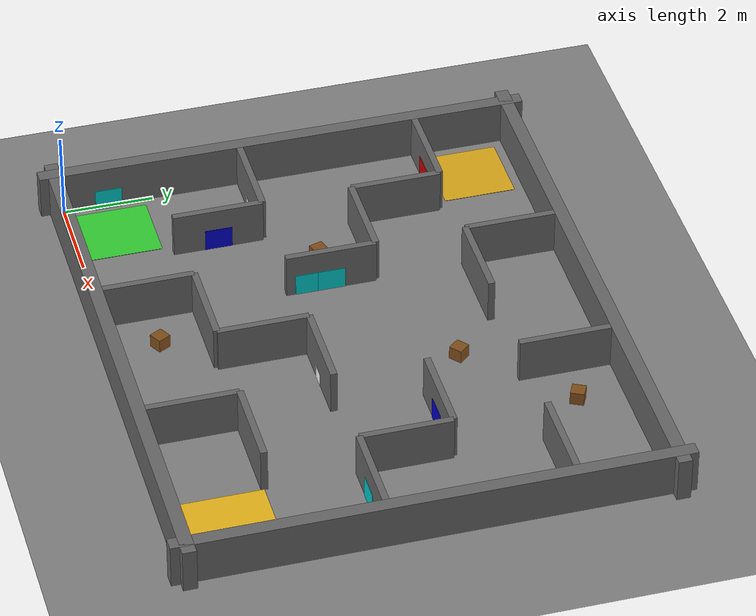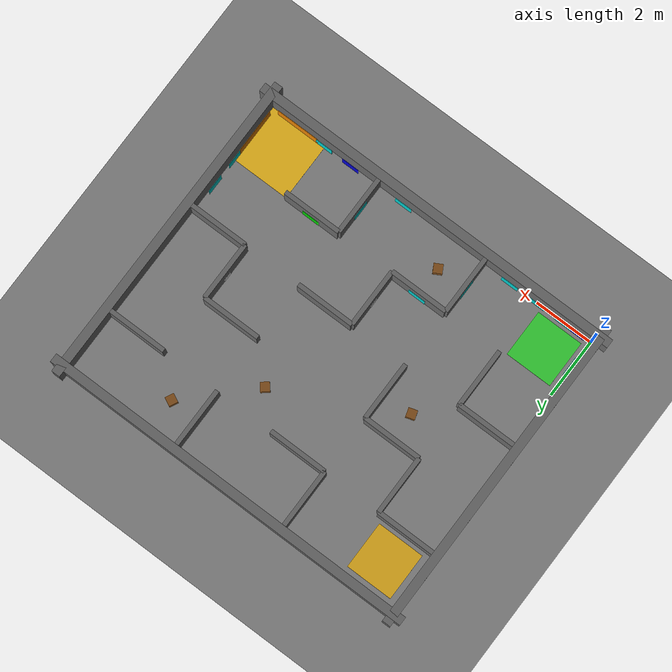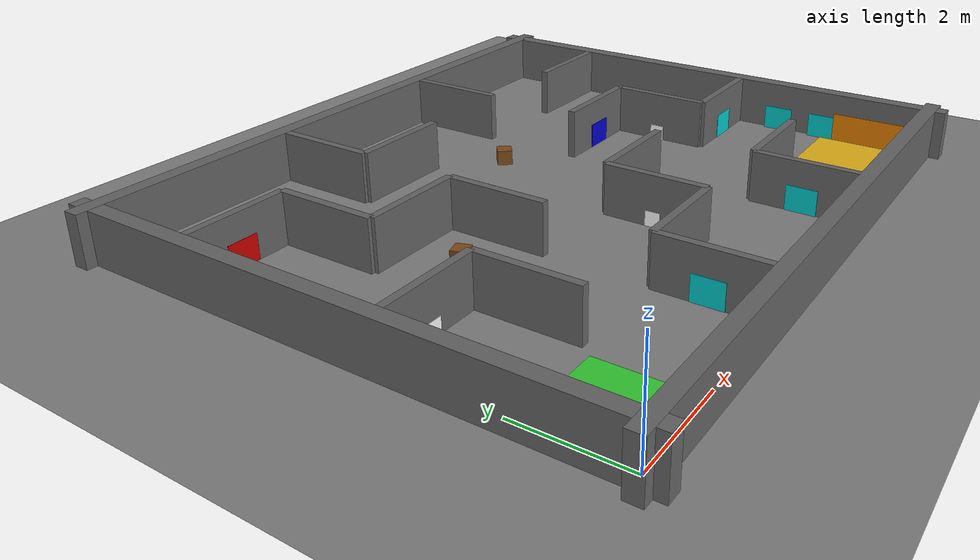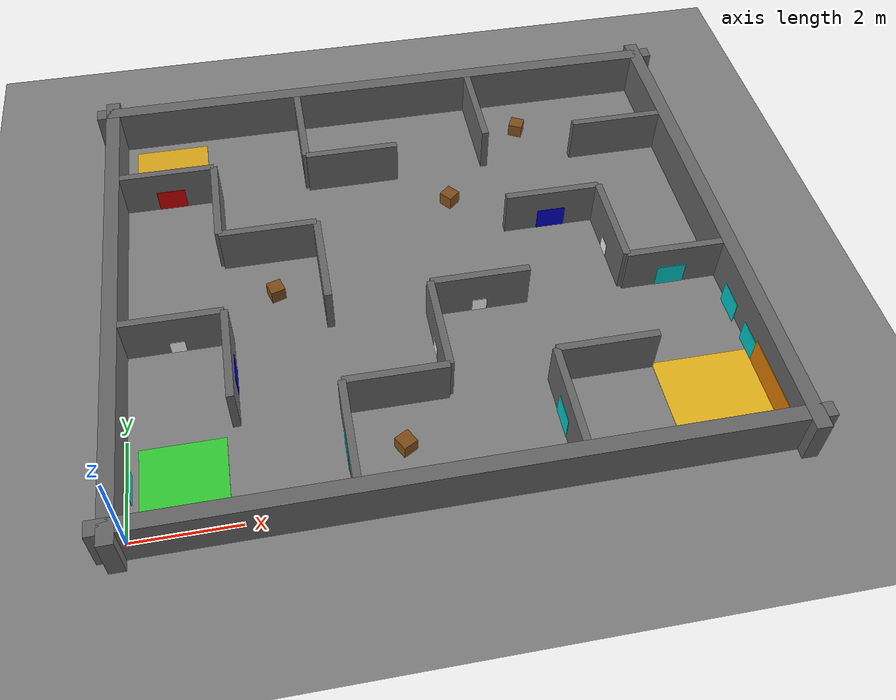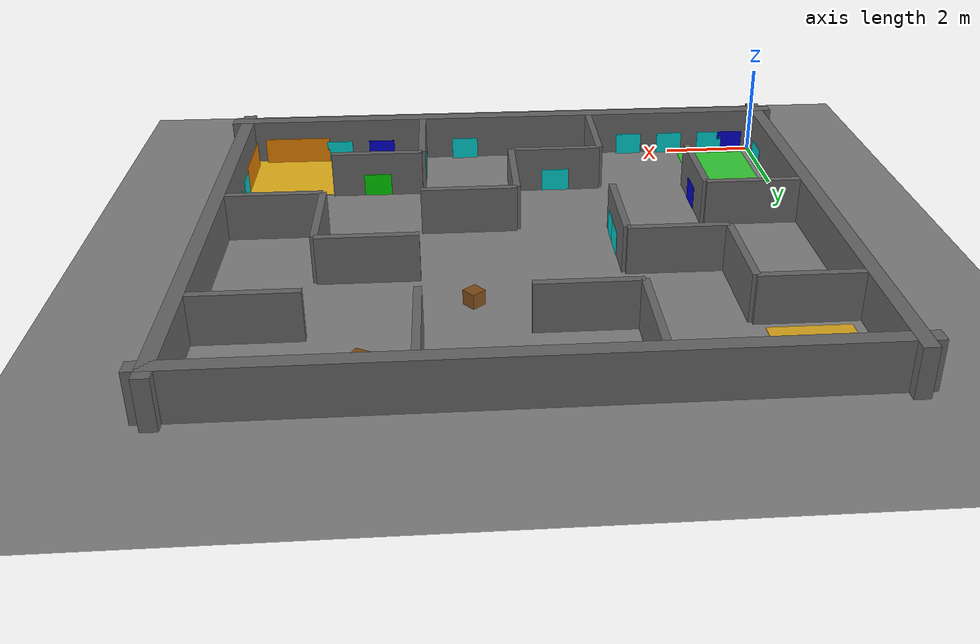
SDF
<?xml version="1.0" ?>
<sdf version="1.9">
  <world name="ugv_arena">

    <physics name="1ms" type="ignored">
      <max_step_size>0.01</max_step_size>
      <real_time_factor>1</real_time_factor>
    </physics>
    <plugin filename="gz-sim-physics-system"
            name="gz::sim::systems::Physics"/>
    <plugin filename="gz-sim-user-commands-system"
            name="gz::sim::systems::UserCommands"/>
    <plugin filename="gz-sim-scene-broadcaster-system"
            name="gz::sim::systems::SceneBroadcaster"/>
    <plugin filename="gz-sim-imu-system"
            name="gz::sim::systems::Imu"/>
    <plugin filename="gz-sim-sensors-system"
            name="gz::sim::systems::Sensors">
      <render_engine>ogre2</render_engine>
    </plugin>
    <plugin filename="gz-sim-contact-system"
            name="gz::sim::systems::Contact"/>

    <scene>
      <ambient>0.6 0.6 0.6 1</ambient>
      <background>0.7 0.8 0.95 1</background>
      <shadows>true</shadows>
      <grid>false</grid>
    </scene>

    <light type="directional" name="sun">
      <cast_shadows>true</cast_shadows>
      <pose>6 5 15 0 0 0</pose>
      <diffuse>0.9 0.9 0.9 1</diffuse>
      <specular>0.3 0.3 0.3 1</specular>
      <direction>-0.5 0.3 -0.9</direction>
    </light>
    <light type="directional" name="fill">
      <cast_shadows>false</cast_shadows>
      <pose>6 5 12 0 0 0</pose>
      <diffuse>0.4 0.4 0.4 1</diffuse>
      <specular>0.1 0.1 0.1 1</specular>
      <direction>0.5 -0.3 -0.8</direction>
    </light>

    <!-- Ground (trimmed to arena) -->
    <model name="ground">
      <static>true</static>
      <pose>6.0 5.0 0 0 0 0</pose>
      <link name="link">
        <collision name="c"><geometry><plane><normal>0 0 1</normal>
          <size>13.0 11.0</size></plane></geometry></collision>
        <visual name="v"><geometry><plane><normal>0 0 1</normal>
          <size>13.0 11.0</size></plane></geometry>
          <material><ambient>0.5 0.5 0.5 1</ambient>
            <diffuse>0.5 0.5 0.5 1</diffuse></material>
        </visual>
      </link>
    </model>

    <!-- START zone (green) cell(0,0) center=(1,1) -->
    <model name="start_zone"><static>true</static>
      <pose>1 1 0.005 0 0 0</pose>
      <link name="l"><visual name="v"><geometry><box>
        <size>1.6 1.6 0.01</size></box></geometry>
        <material><ambient>0.2 0.8 0.2 1</ambient>
          <diffuse>0.2 0.8 0.2 1</diffuse></material>
      </visual></link>
    </model>

    <!-- TRUE GOAL (gold) cell(5,0) center=(11,1)  floor only, no walls blocking -->
    <model name="true_goal"><static>true</static>
      <pose>11 1 0.005 0 0 0</pose>
      <link name="l"><visual name="v"><geometry><box>
        <size>2.0 2.0 0.01</size></box></geometry>
        <material><ambient>0.9 0.7 0.1 1</ambient>
          <diffuse>0.9 0.7 0.1 1</diffuse></material>
      </visual></link>
    </model>

    <!-- FALSE GOAL  moved to top-left cell(0,4) center=(1,9) -->
    <model name="false_goal"><static>true</static>
      <pose>1 9 0.005 0 0 0</pose>
      <link name="l"><visual name="v"><geometry><box>
        <size>1.6 1.6 0.01</size></box></geometry>
        <material><ambient>0.85 0.65 0.1 1</ambient>
          <diffuse>0.85 0.65 0.1 1</diffuse></material>
      </visual></link>
    </model>

    <!-- ARENA WALLS: each wall is its own static model with collision+visual -->
    <model name="wall_1"><static>true</static>
      <pose>6.000 -0.150 0.5 0 0 0</pose>
      <link name="link">
        <collision name="c"><geometry><box><size>13.000 0.3 1.0</size></box></geometry></collision>
        <visual name="v"><geometry><box><size>13.000 0.3 1.0</size></box></geometry>
          <material><ambient>0.35 0.35 0.35 1</ambient><diffuse>0.4 0.4 0.4 1</diffuse></material>
        </visual>
      </link>
    </model>
    <model name="wall_2"><static>true</static>
      <pose>6.000 10.150 0.5 0 0 0</pose>
      <link name="link">
        <collision name="c"><geometry><box><size>13.000 0.3 1.0</size></box></geometry></collision>
        <visual name="v"><geometry><box><size>13.000 0.3 1.0</size></box></geometry>
          <material><ambient>0.35 0.35 0.35 1</ambient><diffuse>0.4 0.4 0.4 1</diffuse></material>
        </visual>
      </link>
    </model>
    <model name="wall_3"><static>true</static>
      <pose>-0.150 5.000 0.5 0 0 1.5708</pose>
      <link name="link">
        <collision name="c"><geometry><box><size>11.000 0.3 1.0</size></box></geometry></collision>
        <visual name="v"><geometry><box><size>11.000 0.3 1.0</size></box></geometry>
          <material><ambient>0.35 0.35 0.35 1</ambient><diffuse>0.4 0.4 0.4 1</diffuse></material>
        </visual>
      </link>
    </model>
    <model name="wall_4"><static>true</static>
      <pose>12.150 5.000 0.5 0 0 1.5708</pose>
      <link name="link">
        <collision name="c"><geometry><box><size>11.000 0.3 1.0</size></box></geometry></collision>
        <visual name="v"><geometry><box><size>11.000 0.3 1.0</size></box></geometry>
          <material><ambient>0.35 0.35 0.35 1</ambient><diffuse>0.4 0.4 0.4 1</diffuse></material>
        </visual>
      </link>
    </model>
    <model name="wall_5"><static>true</static>
      <pose>5.000 2.000 0.5 0 0 0</pose>
      <link name="link">
        <collision name="c"><geometry><box><size>2.000 0.15 1.0</size></box></geometry></collision>
        <visual name="v"><geometry><box><size>2.000 0.15 1.0</size></box></geometry>
          <material><ambient>0.35 0.35 0.35 1</ambient><diffuse>0.4 0.4 0.4 1</diffuse></material>
        </visual>
      </link>
    </model>
    <model name="wall_6"><static>true</static>
      <pose>9.000 2.000 0.5 0 0 0</pose>
      <link name="link">
        <collision name="c"><geometry><box><size>2.000 0.15 1.0</size></box></geometry></collision>
        <visual name="v"><geometry><box><size>2.000 0.15 1.0</size></box></geometry>
          <material><ambient>0.35 0.35 0.35 1</ambient><diffuse>0.4 0.4 0.4 1</diffuse></material>
        </visual>
      </link>
    </model>
    <model name="wall_7"><static>true</static>
      <pose>1.000 4.000 0.5 0 0 0</pose>
      <link name="link">
        <collision name="c"><geometry><box><size>2.000 0.15 1.0</size></box></geometry></collision>
        <visual name="v"><geometry><box><size>2.000 0.15 1.0</size></box></geometry>
          <material><ambient>0.35 0.35 0.35 1</ambient><diffuse>0.4 0.4 0.4 1</diffuse></material>
        </visual>
      </link>
    </model>
    <model name="wall_8"><static>true</static>
      <pose>7.000 4.000 0.5 0 0 0</pose>
      <link name="link">
        <collision name="c"><geometry><box><size>2.000 0.15 1.0</size></box></geometry></collision>
        <visual name="v"><geometry><box><size>2.000 0.15 1.0</size></box></geometry>
          <material><ambient>0.35 0.35 0.35 1</ambient><diffuse>0.4 0.4 0.4 1</diffuse></material>
        </visual>
      </link>
    </model>
    <model name="wall_9"><static>true</static>
      <pose>11.000 4.000 0.5 0 0 0</pose>
      <link name="link">
        <collision name="c"><geometry><box><size>2.000 0.15 1.0</size></box></geometry></collision>
        <visual name="v"><geometry><box><size>2.000 0.15 1.0</size></box></geometry>
          <material><ambient>0.35 0.35 0.35 1</ambient><diffuse>0.4 0.4 0.4 1</diffuse></material>
        </visual>
      </link>
    </model>
    <model name="wall_10"><static>true</static>
      <pose>3.000 6.000 0.5 0 0 0</pose>
      <link name="link">
        <collision name="c"><geometry><box><size>2.000 0.15 1.0</size></box></geometry></collision>
        <visual name="v"><geometry><box><size>2.000 0.15 1.0</size></box></geometry>
          <material><ambient>0.35 0.35 0.35 1</ambient><diffuse>0.4 0.4 0.4 1</diffuse></material>
        </visual>
      </link>
    </model>
    <model name="wall_11"><static>true</static>
      <pose>9.000 6.000 0.5 0 0 0</pose>
      <link name="link">
        <collision name="c"><geometry><box><size>2.000 0.15 1.0</size></box></geometry></collision>
        <visual name="v"><geometry><box><size>2.000 0.15 1.0</size></box></geometry>
          <material><ambient>0.35 0.35 0.35 1</ambient><diffuse>0.4 0.4 0.4 1</diffuse></material>
        </visual>
      </link>
    </model>
    <model name="wall_12"><static>true</static>
      <pose>1.000 8.000 0.5 0 0 0</pose>
      <link name="link">
        <collision name="c"><geometry><box><size>2.000 0.15 1.0</size></box></geometry></collision>
        <visual name="v"><geometry><box><size>2.000 0.15 1.0</size></box></geometry>
          <material><ambient>0.35 0.35 0.35 1</ambient><diffuse>0.4 0.4 0.4 1</diffuse></material>
        </visual>
      </link>
    </model>
    <model name="wall_13"><static>true</static>
      <pose>5.000 8.000 0.5 0 0 0</pose>
      <link name="link">
        <collision name="c"><geometry><box><size>2.000 0.15 1.0</size></box></geometry></collision>
        <visual name="v"><geometry><box><size>2.000 0.15 1.0</size></box></geometry>
          <material><ambient>0.35 0.35 0.35 1</ambient><diffuse>0.4 0.4 0.4 1</diffuse></material>
        </visual>
      </link>
    </model>
    <model name="wall_14"><static>true</static>
      <pose>11.000 8.000 0.5 0 0 0</pose>
      <link name="link">
        <collision name="c"><geometry><box><size>2.000 0.15 1.0</size></box></geometry></collision>
        <visual name="v"><geometry><box><size>2.000 0.15 1.0</size></box></geometry>
          <material><ambient>0.35 0.35 0.35 1</ambient><diffuse>0.4 0.4 0.4 1</diffuse></material>
        </visual>
      </link>
    </model>
    <model name="wall_15"><static>true</static>
      <pose>2.000 3.000 0.5 0 0 1.5708</pose>
      <link name="link">
        <collision name="c"><geometry><box><size>2.000 0.15 1.0</size></box></geometry></collision>
        <visual name="v"><geometry><box><size>2.000 0.15 1.0</size></box></geometry>
          <material><ambient>0.35 0.35 0.35 1</ambient><diffuse>0.4 0.4 0.4 1</diffuse></material>
        </visual>
      </link>
    </model>
    <model name="wall_16"><static>true</static>
      <pose>2.000 7.000 0.5 0 0 1.5708</pose>
      <link name="link">
        <collision name="c"><geometry><box><size>2.000 0.15 1.0</size></box></geometry></collision>
        <visual name="v"><geometry><box><size>2.000 0.15 1.0</size></box></geometry>
          <material><ambient>0.35 0.35 0.35 1</ambient><diffuse>0.4 0.4 0.4 1</diffuse></material>
        </visual>
      </link>
    </model>
    <model name="wall_17"><static>true</static>
      <pose>4.000 1.000 0.5 0 0 1.5708</pose>
      <link name="link">
        <collision name="c"><geometry><box><size>2.000 0.15 1.0</size></box></geometry></collision>
        <visual name="v"><geometry><box><size>2.000 0.15 1.0</size></box></geometry>
          <material><ambient>0.35 0.35 0.35 1</ambient><diffuse>0.4 0.4 0.4 1</diffuse></material>
        </visual>
      </link>
    </model>
    <model name="wall_18"><static>true</static>
      <pose>4.000 5.000 0.5 0 0 1.5708</pose>
      <link name="link">
        <collision name="c"><geometry><box><size>2.000 0.15 1.0</size></box></geometry></collision>
        <visual name="v"><geometry><box><size>2.000 0.15 1.0</size></box></geometry>
          <material><ambient>0.35 0.35 0.35 1</ambient><diffuse>0.4 0.4 0.4 1</diffuse></material>
        </visual>
      </link>
    </model>
    <model name="wall_19"><static>true</static>
      <pose>4.000 9.000 0.5 0 0 1.5708</pose>
      <link name="link">
        <collision name="c"><geometry><box><size>2.000 0.15 1.0</size></box></geometry></collision>
        <visual name="v"><geometry><box><size>2.000 0.15 1.0</size></box></geometry>
          <material><ambient>0.35 0.35 0.35 1</ambient><diffuse>0.4 0.4 0.4 1</diffuse></material>
        </visual>
      </link>
    </model>
    <model name="wall_20"><static>true</static>
      <pose>6.000 3.000 0.5 0 0 1.5708</pose>
      <link name="link">
        <collision name="c"><geometry><box><size>2.000 0.15 1.0</size></box></geometry></collision>
        <visual name="v"><geometry><box><size>2.000 0.15 1.0</size></box></geometry>
          <material><ambient>0.35 0.35 0.35 1</ambient><diffuse>0.4 0.4 0.4 1</diffuse></material>
        </visual>
      </link>
    </model>
    <model name="wall_21"><static>true</static>
      <pose>8.000 1.000 0.5 0 0 1.5708</pose>
      <link name="link">
        <collision name="c"><geometry><box><size>2.000 0.15 1.0</size></box></geometry></collision>
        <visual name="v"><geometry><box><size>2.000 0.15 1.0</size></box></geometry>
          <material><ambient>0.35 0.35 0.35 1</ambient><diffuse>0.4 0.4 0.4 1</diffuse></material>
        </visual>
      </link>
    </model>
    <model name="wall_22"><static>true</static>
      <pose>8.000 9.000 0.5 0 0 1.5708</pose>
      <link name="link">
        <collision name="c"><geometry><box><size>2.000 0.15 1.0</size></box></geometry></collision>
        <visual name="v"><geometry><box><size>2.000 0.15 1.0</size></box></geometry>
          <material><ambient>0.35 0.35 0.35 1</ambient><diffuse>0.4 0.4 0.4 1</diffuse></material>
        </visual>
      </link>
    </model>
    <model name="wall_23"><static>true</static>
      <pose>10.000 5.000 0.5 0 0 1.5708</pose>
      <link name="link">
        <collision name="c"><geometry><box><size>2.000 0.15 1.0</size></box></geometry></collision>
        <visual name="v"><geometry><box><size>2.000 0.15 1.0</size></box></geometry>
          <material><ambient>0.35 0.35 0.35 1</ambient><diffuse>0.4 0.4 0.4 1</diffuse></material>
        </visual>
      </link>
    </model>

    <!-- ArUco markers ON wall surfaces, camera height z=0.15           -->

    <!-- aruco_0: On south face of horizontal wall at y=4, x=1.0       -->
    <!-- Robot must explore north to cell(0,1) area to see it         -->
    <model name="aruco_0"><static>true</static>
      <pose>1.0 3.925 0.15 0 0 0.0000</pose>
      <link name="l"><visual name="v"><geometry><box><size>0.3 0.01 0.3</size></box></geometry>
        <material><diffuse>1 1 1 1</diffuse>
          <pbr><metal>
            <albedo_map>../textures/aruco_0.png</albedo_map>
          </metal></pbr>
        </material></visual></link>
    </model>

    <!-- aruco_1: On west face of vertical wall at x=6, y=3.0         -->
    <!-- Robot must reach cell(2,1) area to see it                     -->
    <model name="aruco_1"><static>true</static>
      <pose>5.925 3.0 0.15 0 0 1.5708</pose>
      <link name="l"><visual name="v"><geometry><box><size>0.3 0.01 0.3</size></box></geometry>
        <material><diffuse>1 1 1 1</diffuse>
          <pbr><metal>
            <albedo_map>../textures/aruco_1.png</albedo_map>
          </metal></pbr>
        </material></visual></link>
    </model>

    <!-- aruco_2: On south face of horizontal wall at y=4, near x=7   -->
    <!-- Robot travels north in cell(3,1), sees this on wall ahead     -->
    <model name="aruco_2"><static>true</static>
      <pose>7.0 3.925 0.15 0 0 0.0000</pose>
      <link name="l"><visual name="v"><geometry><box><size>0.3 0.01 0.3</size></box></geometry>
        <material><diffuse>1 1 1 1</diffuse>
          <pbr><metal>
            <albedo_map>../textures/aruco_2.png</albedo_map>
          </metal></pbr>
        </material></visual></link>
    </model>

    <!-- aruco_3: On west face of vertical wall at x=10, near y=5     -->
    <!-- Robot travels east in cell(4,2), sees this on wall ahead      -->
    <model name="aruco_3"><static>true</static>
      <pose>9.925 5.0 0.15 0 0 1.5708</pose>
      <link name="l"><visual name="v"><geometry><box><size>0.3 0.01 0.3</size></box></geometry>
        <material><diffuse>1 1 1 1</diffuse>
          <pbr><metal>
            <albedo_map>../textures/aruco_3.png</albedo_map>
          </metal></pbr>
        </material></visual></link>
    </model>

    <!-- ALL signs on REAL walls  verified by script against wall arrays -->
    <!-- Path: (0,0)N>(0,1)[A0]S>(0,0)E>(1,0)N>(1,1)E>(2,1)[A1]       -->
    <!--   E>(5,1)S>(5,0)[GOAL]                                         -->

    <!-- 23 SIGNS: path (20) + goal (2) + trap (1). No recovery clutter. -->

    <!-- (0,0) NORTH to aruco_0 -->
    <model name="s01_fwd"><static>true</static>
      <pose>1.0 0.08 0.25 0 0 0.0000</pose>
      <link name="l"><visual name="v"><geometry><box><size>0.60 0.01 0.50</size></box></geometry>
        <material><ambient>0 0.8 0.8 1</ambient><diffuse>0 0.8 0.8 1</diffuse></material>
      </visual></link>
    </model>
    <model name="s02_fwd"><static>true</static>
      <pose>0.08 1.0 0.25 0 0 1.5708</pose>
      <link name="l"><visual name="v"><geometry><box><size>0.60 0.01 0.50</size></box></geometry>
        <material><ambient>0 0.8 0.8 1</ambient><diffuse>0 0.8 0.8 1</diffuse></material>
      </visual></link>
    </model>
    <!-- (0,0) EAST after return -->
    <model name="s03_right"><static>true</static>
      <pose>0.5 0.08 0.25 0 0 0.0000</pose>
      <link name="l"><visual name="v"><geometry><box><size>0.60 0.01 0.50</size></box></geometry>
        <material><ambient>0 0 0.8 1</ambient><diffuse>0 0 0.8 1</diffuse></material>
      </visual></link>
    </model>
    <model name="s04_fwd"><static>true</static>
      <pose>2.0 0.08 0.25 0 0 0.0000</pose>
      <link name="l"><visual name="v"><geometry><box><size>0.60 0.01 0.50</size></box></geometry>
        <material><ambient>0 0.8 0.8 1</ambient><diffuse>0 0.8 0.8 1</diffuse></material>
      </visual></link>
    </model>
    <!-- (1,0) NORTH -->
    <model name="s05_fwd"><static>true</static>
      <pose>3.92 1.0 0.25 0 0 -1.5708</pose>
      <link name="l"><visual name="v"><geometry><box><size>0.60 0.01 0.50</size></box></geometry>
        <material><ambient>0 0.8 0.8 1</ambient><diffuse>0 0.8 0.8 1</diffuse></material>
      </visual></link>
    </model>
    <model name="s05b_fwd"><static>true</static>
      <pose>3.0 0.08 0.25 0 0 0.0000</pose>
      <link name="l"><visual name="v"><geometry><box><size>0.60 0.01 0.50</size></box></geometry>
        <material><ambient>0 0.8 0.8 1</ambient><diffuse>0 0.8 0.8 1</diffuse></material>
      </visual></link>
    </model>
    <!-- (1,1) EAST to aruco_1 -->
    <model name="s06_right"><static>true</static>
      <pose>2.08 3.0 0.25 0 0 1.5708</pose>
      <link name="l"><visual name="v"><geometry><box><size>0.60 0.01 0.50</size></box></geometry>
        <material><ambient>0 0 0.8 1</ambient><diffuse>0 0 0.8 1</diffuse></material>
      </visual></link>
    </model>
    <!-- (2,1) NORTH -->
    <model name="s07_fwd"><static>true</static>
      <pose>5.0 2.08 0.25 0 0 0.0000</pose>
      <link name="l"><visual name="v"><geometry><box><size>0.60 0.01 0.50</size></box></geometry>
        <material><ambient>0 0.8 0.8 1</ambient><diffuse>0 0.8 0.8 1</diffuse></material>
      </visual></link>
    </model>
    <!-- (2,2) EAST -->
    <model name="s08_fwd"><static>true</static>
      <pose>4.08 5.0 0.25 0 0 1.5708</pose>
      <link name="l"><visual name="v"><geometry><box><size>0.60 0.01 0.50</size></box></geometry>
        <material><ambient>0 0.8 0.8 1</ambient><diffuse>0 0.8 0.8 1</diffuse></material>
      </visual></link>
    </model>
    <!-- (3,2) EAST to aruco_3 -->
    <model name="s09_fwd"><static>true</static>
      <pose>4.08 4.5 0.25 0 0 1.5708</pose>
      <link name="l"><visual name="v"><geometry><box><size>0.60 0.01 0.50</size></box></geometry>
        <material><ambient>0 0.8 0.8 1</ambient><diffuse>0 0.8 0.8 1</diffuse></material>
      </visual></link>
    </model>
    <!-- (4,2) SOUTH -->
    <model name="s10_right"><static>true</static>
      <pose>9.0 5.92 0.25 0 0 3.1416</pose>
      <link name="l"><visual name="v"><geometry><box><size>0.60 0.01 0.50</size></box></geometry>
        <material><ambient>0 0 0.8 1</ambient><diffuse>0 0 0.8 1</diffuse></material>
      </visual></link>
    </model>
    <!-- (4,1) WEST to aruco_2 -->
    <model name="s11_left"><static>true</static>
      <pose>9.0 2.08 0.25 0 0 0.0000</pose>
      <link name="l"><visual name="v"><geometry><box><size>0.60 0.01 0.50</size></box></geometry>
        <material><ambient>0 0.8 0 1</ambient><diffuse>0 0.8 0 1</diffuse></material>
      </visual></link>
    </model>
    <!-- (3,1) return EAST -->
    <model name="s12_fwd"><static>true</static>
      <pose>7.92 1.0 0.25 0 0 -1.5708</pose>
      <link name="l"><visual name="v"><geometry><box><size>0.60 0.01 0.50</size></box></geometry>
        <material><ambient>0 0.8 0.8 1</ambient><diffuse>0 0.8 0.8 1</diffuse></material>
      </visual></link>
    </model>
    <model name="s12b_fwd"><static>true</static>
      <pose>7.0 0.08 0.25 0 0 0.0000</pose>
      <link name="l"><visual name="v"><geometry><box><size>0.60 0.01 0.50</size></box></geometry>
        <material><ambient>0 0.8 0.8 1</ambient><diffuse>0 0.8 0.8 1</diffuse></material>
      </visual></link>
    </model>
    <!-- (4,1) EAST to (5,1) -->
    <model name="s13_right"><static>true</static>
      <pose>9.0 0.08 0.25 0 0 0.0000</pose>
      <link name="l"><visual name="v"><geometry><box><size>0.60 0.01 0.50</size></box></geometry>
        <material><ambient>0 0 0.8 1</ambient><diffuse>0 0 0.8 1</diffuse></material>
      </visual></link>
    </model>
    <model name="s13b_fwd"><static>true</static>
      <pose>10.0 0.08 0.25 0 0 0.0000</pose>
      <link name="l"><visual name="v"><geometry><box><size>0.60 0.01 0.50</size></box></geometry>
        <material><ambient>0 0.8 0.8 1</ambient><diffuse>0 0.8 0.8 1</diffuse></material>
      </visual></link>
    </model>
    <!-- (5,1) SOUTH to goal -->
    <model name="s14_fwd"><static>true</static>
      <pose>11.92 3.0 0.25 0 0 -1.5708</pose>
      <link name="l"><visual name="v"><geometry><box><size>0.60 0.01 0.50</size></box></geometry>
        <material><ambient>0 0.8 0.8 1</ambient><diffuse>0 0.8 0.8 1</diffuse></material>
      </visual></link>
    </model>
    <model name="s15_fwd"><static>true</static>
      <pose>11.0 3.92 0.25 0 0 3.1416</pose>
      <link name="l"><visual name="v"><geometry><box><size>0.60 0.01 0.50</size></box></geometry>
        <material><ambient>0 0.8 0.8 1</ambient><diffuse>0 0.8 0.8 1</diffuse></material>
      </visual></link>
    </model>
    <model name="s15b_fwd"><static>true</static>
      <pose>11.92 2.0 0.25 0 0 -1.5708</pose>
      <link name="l"><visual name="v"><geometry><box><size>0.60 0.01 0.50</size></box></geometry>
        <material><ambient>0 0.8 0.8 1</ambient><diffuse>0 0.8 0.8 1</diffuse></material>
      </visual></link>
    </model>

    <!-- GOAL  BIG orange panels on 2 walls -->
    <model name="s16_goal"><static>true</static>
      <pose>11.0 0.08 0.30 0 0 0</pose>
      <link name="l"><visual name="v"><geometry><box>
        <size>1.5 0.01 0.60</size></box></geometry>
        <material><ambient>0.9 0.5 0 1</ambient>
          <diffuse>0.9 0.5 0 1</diffuse></material>
      </visual></link>
    </model>
    <model name="s17_goal2"><static>true</static>
      <pose>11.92 1.0 0.30 0 0 1.5708</pose>
      <link name="l"><visual name="v"><geometry><box>
        <size>1.5 0.01 0.60</size></box></geometry>
        <material><ambient>0.9 0.5 0 1</ambient>
          <diffuse>0.9 0.5 0 1</diffuse></material>
      </visual></link>
    </model>

    <!-- TRAP: STOP near new false goal (top-left) -->
    <model name="s18_stop"><static>true</static>
      <pose>1.0 7.92 0.25 0 0 3.1416</pose>
      <link name="l"><visual name="v"><geometry><box><size>0.60 0.01 0.50</size></box></geometry>
        <material><ambient>0.8 0 0 1</ambient><diffuse>0.8 0 0 1</diffuse></material>
      </visual></link>
    </model>

    <!-- Static obstacles  visual only (NO collision to prevent robot flipping) -->
    <model name="obs1"><static>true</static>
      <pose>3.0 5.0 0.15 0 0 0.3</pose>
      <link name="l">
        <visual name="v"><geometry><box><size>0.3 0.3 0.3</size></box></geometry>
          <material><ambient>0.5 0.3 0.1 1</ambient>
            <diffuse>0.5 0.3 0.1 1</diffuse></material></visual>
      </link>
    </model>
    <model name="obs2"><static>true</static>
      <pose>7.0 7.0 0.15 0 0 0.7</pose>
      <link name="l">
        <visual name="v"><geometry><box><size>0.3 0.3 0.3</size></box></geometry>
          <material><ambient>0.5 0.3 0.1 1</ambient>
            <diffuse>0.5 0.3 0.1 1</diffuse></material></visual>
      </link>
    </model>
    <model name="obs3"><static>true</static>
      <pose>5.0 1.0 0.15 0 0 0.5</pose>
      <link name="l">
        <visual name="v"><geometry><box><size>0.3 0.3 0.3</size></box></geometry>
          <material><ambient>0.5 0.3 0.1 1</ambient>
            <diffuse>0.5 0.3 0.1 1</diffuse></material></visual>
      </link>
    </model>
    <model name="obs4"><static>true</static>
      <pose>9.0 9.0 0.15 0 0 1.1</pose>
      <link name="l">
        <visual name="v"><geometry><box><size>0.3 0.3 0.3</size></box></geometry>
          <material><ambient>0.5 0.3 0.1 1</ambient>
            <diffuse>0.5 0.3 0.1 1</diffuse></material></visual>
      </link>
    </model>

  </world>
</sdf>
